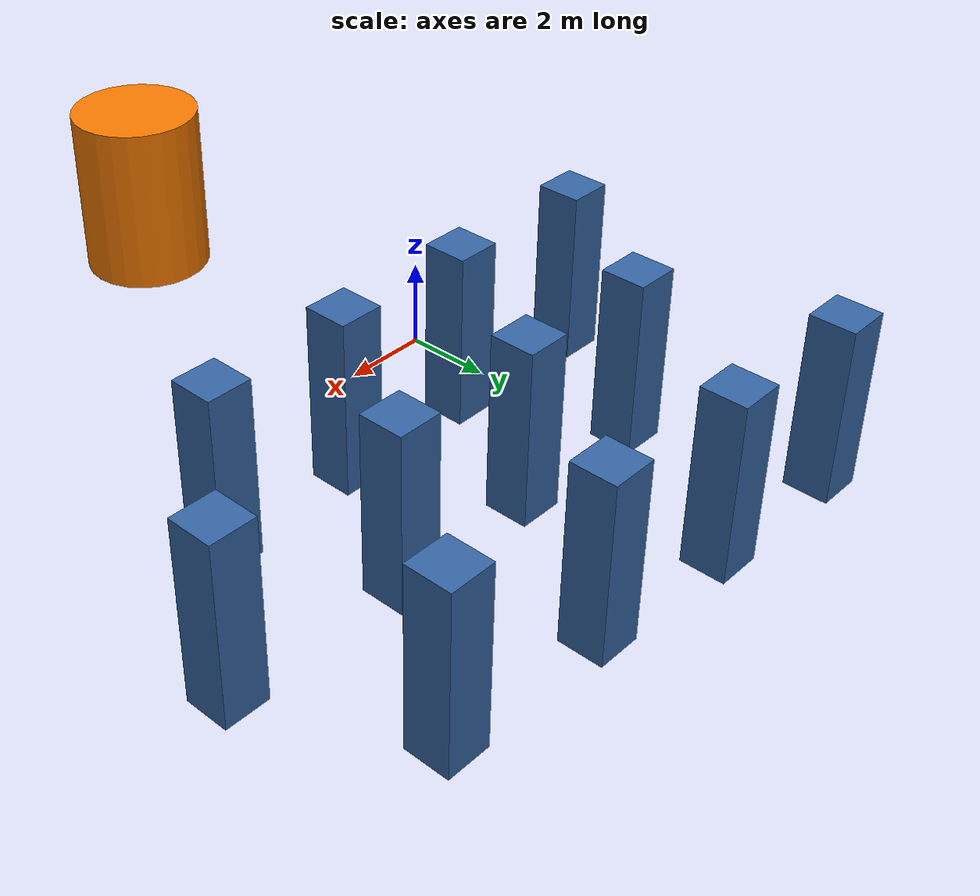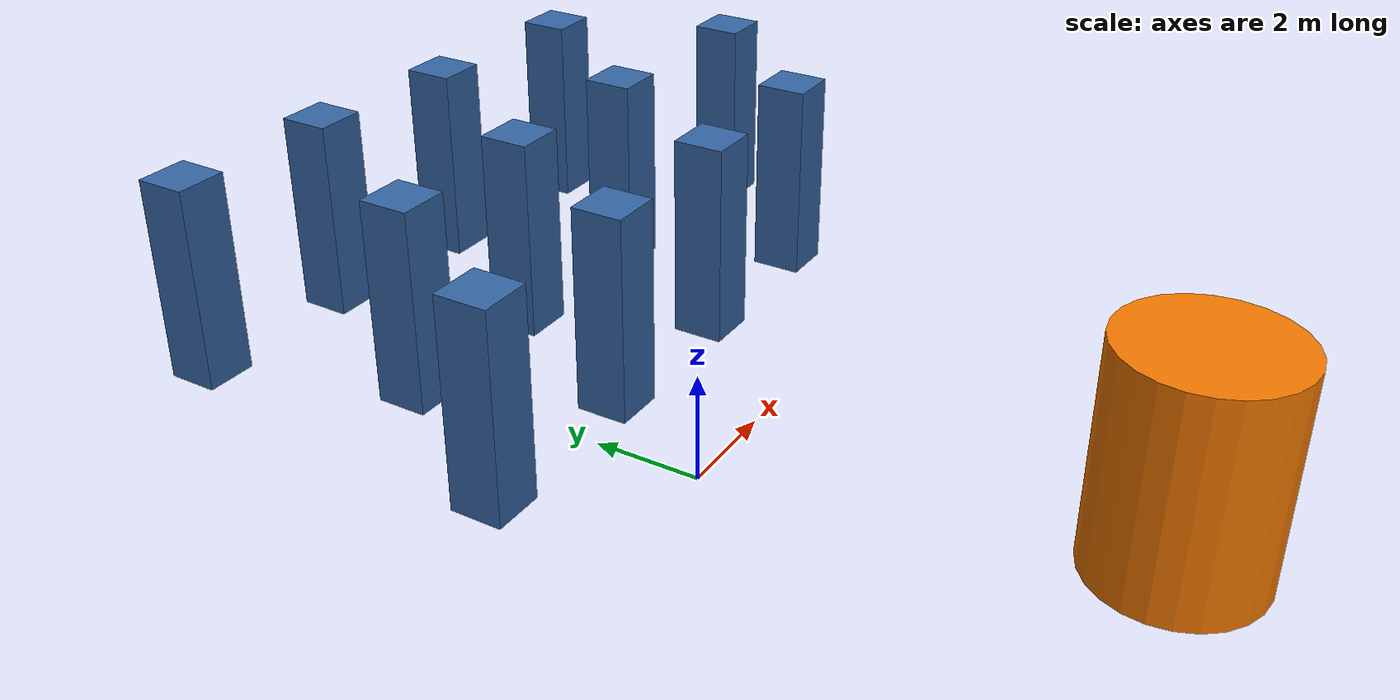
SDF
<sdf version="1.6">
 <world name="vrc_task_1">
  <scene><ambient>0.4 0.4 0.4 1</ambient><background>0.7 0.7 0.7 1</background><shadows>1</shadows></scene>
  <physics name="default_physics" default="0" type="ode">
   <ode>
    <solver>
     <type>quick</type>
     <iters>10</iters>
     <sor>1</sor>
     <use_dynamic_moi_rescaling>0</use_dynamic_moi_rescaling>
    </solver>
    <constraints>
     <cfm>0</cfm>
     <erp>0.2</erp>
     <contact_max_correcting_vel>100</contact_max_correcting_vel>
     <contact_surface_layer>0.001</contact_surface_layer>
    </constraints>
   </ode>
   <max_step_size>0.004</max_step_size>
   <real_time_factor>1</real_time_factor>
   <real_time_update_rate>250</real_time_update_rate>
  </physics>
  <light name="sun" type="directional">
   <pose>0 0 10 0 -0 0</pose>
   <diffuse>0.8 0.8 0.8 1</diffuse>
   <specular>0.2 0.2 0.2 1</specular>
   <attenuation>
    <range>1000</range>
    <constant>0.9</constant>
    <linear>0.01</linear>
    <quadratic>0.001</quadratic>
   </attenuation>
   <direction>-0.5 0.1 -0.9</direction>
  </light>
  <gravity>0 0 -9.8066</gravity>
  <magnetic_field>6e-06 2.3e-05 -4.2e-05</magnetic_field>
  <atmosphere type="adiabatic"/>
  <spherical_coordinates>
   <surface_model>EARTH_WGS84</surface_model>
   <latitude_deg>0</latitude_deg>
   <longitude_deg>0</longitude_deg>
   <elevation>0</elevation>
   <heading_deg>0</heading_deg>
  </spherical_coordinates>
  <audio><device>default</device></audio>
  <model name="unit_cylinder-v1">
   <link name="link">
    <inertial>
     <mass>1</mass>
     <inertia><ixx>0.145833</ixx><ixy>0</ixy><ixz>0</ixz><iyy>0.145833</iyy><iyz>0</iyz><izz>0.125</izz></inertia>
    </inertial>
    <pose>0 0 1.5 0 -0 0</pose>
    <visual name="visual">
     <geometry><cylinder><radius>1.5</radius><length>4</length></cylinder></geometry>
     <material>
      <script><name>Gazebo/Grey</name><uri>file://media/materials/scripts/gazebo.material</uri></script>
      <shader type="vertex"><normal_map>__default__</normal_map></shader>
      <ambient>0.961 0.475 0 1</ambient>
      <diffuse>0.7 0.7 0.7 1</diffuse>
      <specular>0.01 0.01 0.01 1</specular>
      <emissive>0 0 0 1</emissive>
     </material>
    </visual>
    <collision name="collision">
     <geometry><cylinder><radius>1.5</radius><length>4</length></cylinder></geometry>
     <surface>
      <friction>
       <ode><mu>1</mu><mu2>1</mu2><fdir1>0 0 0</fdir1><slip1>0</slip1><slip2>0</slip2></ode>
       <torsional>
        <coefficient>1</coefficient>
        <patch_radius>0</patch_radius>
        <surface_radius>0</surface_radius>
        <use_patch_radius>1</use_patch_radius>
        <ode><slip>0</slip></ode>
       </torsional>
      </friction>
      <bounce><restitution_coefficient>0</restitution_coefficient><threshold>1e+06</threshold></bounce>
      <contact>
       <collide_without_contact>0</collide_without_contact>
       <collide_without_contact_bitmask>1</collide_without_contact_bitmask>
       <collide_bitmask>1</collide_bitmask>
       <ode>
        <soft_cfm>0</soft_cfm>
        <soft_erp>0.2</soft_erp>
        <kp>1e+13</kp>
        <kd>1</kd>
        <max_vel>0.01</max_vel>
        <min_depth>0</min_depth>
       </ode>
       <bullet>
        <split_impulse>1</split_impulse>
        <split_impulse_penetration_threshold>-0.01</split_impulse_penetration_threshold>
        <soft_cfm>0</soft_cfm>
        <soft_erp>0.2</soft_erp>
        <kp>1e+13</kp>
        <kd>1</kd>
       </bullet>
      </contact>
     </surface>
    </collision>
   </link>
   <static>0</static>
   <pose>1.73791 -7.46995 0.499859 1.5e-05 4.7e-05 0.001402</pose>
  </model>
  <model name="unit_box-v1">
   <link name="link">
    <inertial>
     <mass>1</mass>
     <inertia>
      <ixx>0.166667</ixx>
      <ixy>0</ixy>
      <ixz>0</ixz>
      <iyy>0.166667</iyy>
      <iyz>0</iyz>
      <izz>0.166667</izz>
     </inertia>
    </inertial>
    <pose>0 0 1.5 0 -0 0</pose>
    <visual name="visual">
     <geometry><box><size>1 1 4</size></box></geometry>
     <material>
      <script><name>Gazebo/Grey</name><uri>file://media/materials/scripts/gazebo.material</uri></script>
      <shader type="vertex"><normal_map>__default__</normal_map></shader>
      <ambient>0.204 0.396 0.643 1</ambient>
      <diffuse>0.7 0.7 0.7 1</diffuse>
      <specular>0.01 0.01 0.01 1</specular>
      <emissive>0 0 0 1</emissive>
     </material>
    </visual>
    <collision name="collision">
     <geometry><box><size>1 1 4</size></box></geometry>
     <surface>
      <friction>
       <ode><mu>1</mu><mu2>1</mu2><fdir1>0 0 0</fdir1><slip1>0</slip1><slip2>0</slip2></ode>
       <torsional>
        <coefficient>1</coefficient>
        <patch_radius>0</patch_radius>
        <surface_radius>0</surface_radius>
        <use_patch_radius>1</use_patch_radius>
        <ode><slip>0</slip></ode>
       </torsional>
      </friction>
      <bounce><restitution_coefficient>0</restitution_coefficient><threshold>1e+06</threshold></bounce>
      <contact>
       <collide_without_contact>0</collide_without_contact>
       <collide_without_contact_bitmask>1</collide_without_contact_bitmask>
       <collide_bitmask>1</collide_bitmask>
       <ode>
        <soft_cfm>0</soft_cfm>
        <soft_erp>0.2</soft_erp>
        <kp>1e+13</kp>
        <kd>1</kd>
        <max_vel>0.01</max_vel>
        <min_depth>0</min_depth>
       </ode>
       <bullet>
        <split_impulse>1</split_impulse>
        <split_impulse_penetration_threshold>-0.01</split_impulse_penetration_threshold>
        <soft_cfm>0</soft_cfm>
        <soft_erp>0.2</soft_erp>
        <kp>1e+13</kp>
        <kd>1</kd>
       </bullet>
      </contact>
     </surface>
    </collision>
   </link>
   <static>0</static>
   <pose>1.25786 2.44016 0.499988 -2e-06 4e-06 -0.002988</pose>
  </model>
  <model name="unit_box-v1_clone">
   <link name="link">
    <inertial>
     <mass>1</mass>
     <inertia>
      <ixx>0.166667</ixx>
      <ixy>0</ixy>
      <ixz>0</ixz>
      <iyy>0.166667</iyy>
      <iyz>0</iyz>
      <izz>0.166667</izz>
     </inertia>
    </inertial>
    <pose>0 0 1.5 0 -0 0</pose>
    <visual name="visual">
     <geometry><box><size>1 1 4</size></box></geometry>
     <material>
      <script><name>Gazebo/Grey</name><uri>file://media/materials/scripts/gazebo.material</uri></script>
      <shader type="vertex"><normal_map>__default__</normal_map></shader>
      <ambient>0.204 0.396 0.643 1</ambient>
      <diffuse>0.7 0.7 0.7 1</diffuse>
      <specular>0.01 0.01 0.01 1</specular>
      <emissive>0 0 0 1</emissive>
     </material>
    </visual>
    <collision name="collision">
     <geometry><box><size>1 1 4</size></box></geometry>
     <surface>
      <friction>
       <ode><mu>1</mu><mu2>1</mu2><fdir1>0 0 0</fdir1><slip1>0</slip1><slip2>0</slip2></ode>
       <torsional>
        <coefficient>1</coefficient>
        <patch_radius>0</patch_radius>
        <surface_radius>0</surface_radius>
        <use_patch_radius>1</use_patch_radius>
        <ode><slip>0</slip></ode>
       </torsional>
      </friction>
      <bounce><restitution_coefficient>0</restitution_coefficient><threshold>1e+06</threshold></bounce>
      <contact>
       <collide_without_contact>0</collide_without_contact>
       <collide_without_contact_bitmask>1</collide_without_contact_bitmask>
       <collide_bitmask>1</collide_bitmask>
       <ode>
        <soft_cfm>0</soft_cfm>
        <soft_erp>0.2</soft_erp>
        <kp>1e+13</kp>
        <kd>1</kd>
        <max_vel>0.01</max_vel>
        <min_depth>0</min_depth>
       </ode>
       <bullet>
        <split_impulse>1</split_impulse>
        <split_impulse_penetration_threshold>-0.01</split_impulse_penetration_threshold>
        <soft_cfm>0</soft_cfm>
        <soft_erp>0.2</soft_erp>
        <kp>1e+13</kp>
        <kd>1</kd>
       </bullet>
      </contact>
     </surface>
    </collision>
   </link>
   <static>0</static>
   <pose>4.59566 2.42817 0.500001 -2.3e-05 -2e-06 -0.002993</pose>
  </model>
  <model name="unit_box-v1_clone_0">
   <link name="link">
    <inertial>
     <mass>1</mass>
     <inertia>
      <ixx>0.166667</ixx>
      <ixy>0</ixy>
      <ixz>0</ixz>
      <iyy>0.166667</iyy>
      <iyz>0</iyz>
      <izz>0.166667</izz>
     </inertia>
    </inertial>
    <pose>0 0 1.5 0 -0 0</pose>
    <visual name="visual">
     <geometry><box><size>1 1 4</size></box></geometry>
     <material>
      <script><name>Gazebo/Grey</name><uri>file://media/materials/scripts/gazebo.material</uri></script>
      <shader type="vertex"><normal_map>__default__</normal_map></shader>
      <ambient>0.204 0.396 0.643 1</ambient>
      <diffuse>0.7 0.7 0.7 1</diffuse>
      <specular>0.01 0.01 0.01 1</specular>
      <emissive>0 0 0 1</emissive>
     </material>
    </visual>
    <collision name="collision">
     <geometry><box><size>1 1 4</size></box></geometry>
     <surface>
      <friction>
       <ode><mu>1</mu><mu2>1</mu2><fdir1>0 0 0</fdir1><slip1>0</slip1><slip2>0</slip2></ode>
       <torsional>
        <coefficient>1</coefficient>
        <patch_radius>0</patch_radius>
        <surface_radius>0</surface_radius>
        <use_patch_radius>1</use_patch_radius>
        <ode><slip>0</slip></ode>
       </torsional>
      </friction>
      <bounce><restitution_coefficient>0</restitution_coefficient><threshold>1e+06</threshold></bounce>
      <contact>
       <collide_without_contact>0</collide_without_contact>
       <collide_without_contact_bitmask>1</collide_without_contact_bitmask>
       <collide_bitmask>1</collide_bitmask>
       <ode>
        <soft_cfm>0</soft_cfm>
        <soft_erp>0.2</soft_erp>
        <kp>1e+13</kp>
        <kd>1</kd>
        <max_vel>0.01</max_vel>
        <min_depth>0</min_depth>
       </ode>
       <bullet>
        <split_impulse>1</split_impulse>
        <split_impulse_penetration_threshold>-0.01</split_impulse_penetration_threshold>
        <soft_cfm>0</soft_cfm>
        <soft_erp>0.2</soft_erp>
        <kp>1e+13</kp>
        <kd>1</kd>
       </bullet>
      </contact>
     </surface>
    </collision>
   </link>
   <static>0</static>
   <pose>-2.3143 2.48659 0.500001 -2e-06 -2.3e-05 -0.003061</pose>
  </model>
  <model name="unit_box-v1_clone_1">
   <link name="link">
    <inertial>
     <mass>1</mass>
     <inertia>
      <ixx>0.166667</ixx>
      <ixy>0</ixy>
      <ixz>0</ixz>
      <iyy>0.166667</iyy>
      <iyz>0</iyz>
      <izz>0.166667</izz>
     </inertia>
    </inertial>
    <pose>0 0 1.5 0 -0 0</pose>
    <visual name="visual">
     <geometry><box><size>1 1 4</size></box></geometry>
     <material>
      <script><name>Gazebo/Grey</name><uri>file://media/materials/scripts/gazebo.material</uri></script>
      <shader type="vertex"><normal_map>__default__</normal_map></shader>
      <ambient>0.204 0.396 0.643 1</ambient>
      <diffuse>0.7 0.7 0.7 1</diffuse>
      <specular>0.01 0.01 0.01 1</specular>
      <emissive>0 0 0 1</emissive>
     </material>
    </visual>
    <collision name="collision">
     <geometry><box><size>1 1 4</size></box></geometry>
     <surface>
      <friction>
       <ode><mu>1</mu><mu2>1</mu2><fdir1>0 0 0</fdir1><slip1>0</slip1><slip2>0</slip2></ode>
       <torsional>
        <coefficient>1</coefficient>
        <patch_radius>0</patch_radius>
        <surface_radius>0</surface_radius>
        <use_patch_radius>1</use_patch_radius>
        <ode><slip>0</slip></ode>
       </torsional>
      </friction>
      <bounce><restitution_coefficient>0</restitution_coefficient><threshold>1e+06</threshold></bounce>
      <contact>
       <collide_without_contact>0</collide_without_contact>
       <collide_without_contact_bitmask>1</collide_without_contact_bitmask>
       <collide_bitmask>1</collide_bitmask>
       <ode>
        <soft_cfm>0</soft_cfm>
        <soft_erp>0.2</soft_erp>
        <kp>1e+13</kp>
        <kd>1</kd>
        <max_vel>0.01</max_vel>
        <min_depth>0</min_depth>
       </ode>
       <bullet>
        <split_impulse>1</split_impulse>
        <split_impulse_penetration_threshold>-0.01</split_impulse_penetration_threshold>
        <soft_cfm>0</soft_cfm>
        <soft_erp>0.2</soft_erp>
        <kp>1e+13</kp>
        <kd>1</kd>
       </bullet>
      </contact>
     </surface>
    </collision>
   </link>
   <static>0</static>
   <pose>7.93145 2.47085 0.500001 -2.3e-05 -2e-06 -0.003</pose>
  </model>
  <model name="unit_box-v1_clone_2">
   <link name="link">
    <inertial>
     <mass>1</mass>
     <inertia>
      <ixx>0.166667</ixx>
      <ixy>0</ixy>
      <ixz>0</ixz>
      <iyy>0.166667</iyy>
      <iyz>0</iyz>
      <izz>0.166667</izz>
     </inertia>
    </inertial>
    <pose>0 0 1.5 0 -0 0</pose>
    <visual name="visual">
     <geometry><box><size>1 1 4</size></box></geometry>
     <material>
      <script><name>Gazebo/Grey</name><uri>file://media/materials/scripts/gazebo.material</uri></script>
      <shader type="vertex"><normal_map>__default__</normal_map></shader>
      <ambient>0.204 0.396 0.643 1</ambient>
      <diffuse>0.7 0.7 0.7 1</diffuse>
      <specular>0.01 0.01 0.01 1</specular>
      <emissive>0 0 0 1</emissive>
     </material>
    </visual>
    <collision name="collision">
     <geometry><box><size>1 1 4</size></box></geometry>
     <surface>
      <friction>
       <ode><mu>1</mu><mu2>1</mu2><fdir1>0 0 0</fdir1><slip1>0</slip1><slip2>0</slip2></ode>
       <torsional>
        <coefficient>1</coefficient>
        <patch_radius>0</patch_radius>
        <surface_radius>0</surface_radius>
        <use_patch_radius>1</use_patch_radius>
        <ode><slip>0</slip></ode>
       </torsional>
      </friction>
      <bounce><restitution_coefficient>0</restitution_coefficient><threshold>1e+06</threshold></bounce>
      <contact>
       <collide_without_contact>0</collide_without_contact>
       <collide_without_contact_bitmask>1</collide_without_contact_bitmask>
       <collide_bitmask>1</collide_bitmask>
       <ode>
        <soft_cfm>0</soft_cfm>
        <soft_erp>0.2</soft_erp>
        <kp>1e+13</kp>
        <kd>1</kd>
        <max_vel>0.01</max_vel>
        <min_depth>0</min_depth>
       </ode>
       <bullet>
        <split_impulse>1</split_impulse>
        <split_impulse_penetration_threshold>-0.01</split_impulse_penetration_threshold>
        <soft_cfm>0</soft_cfm>
        <soft_erp>0.2</soft_erp>
        <kp>1e+13</kp>
        <kd>1</kd>
       </bullet>
      </contact>
     </surface>
    </collision>
   </link>
   <static>0</static>
   <pose>6.38993 5.62379 0.500001 -2e-06 -2.3e-05 -0.003068</pose>
  </model>
  <model name="unit_box-v1_clone_3">
   <link name="link">
    <inertial>
     <mass>1</mass>
     <inertia>
      <ixx>0.166667</ixx>
      <ixy>0</ixy>
      <ixz>0</ixz>
      <iyy>0.166667</iyy>
      <iyz>0</iyz>
      <izz>0.166667</izz>
     </inertia>
    </inertial>
    <pose>0 0 1.5 0 -0 0</pose>
    <visual name="visual">
     <geometry><box><size>1 1 4</size></box></geometry>
     <material>
      <script><name>Gazebo/Grey</name><uri>file://media/materials/scripts/gazebo.material</uri></script>
      <shader type="vertex"><normal_map>__default__</normal_map></shader>
      <ambient>0.204 0.396 0.643 1</ambient>
      <diffuse>0.7 0.7 0.7 1</diffuse>
      <specular>0.01 0.01 0.01 1</specular>
      <emissive>0 0 0 1</emissive>
     </material>
    </visual>
    <collision name="collision">
     <geometry><box><size>1 1 4</size></box></geometry>
     <surface>
      <friction>
       <ode><mu>1</mu><mu2>1</mu2><fdir1>0 0 0</fdir1><slip1>0</slip1><slip2>0</slip2></ode>
       <torsional>
        <coefficient>1</coefficient>
        <patch_radius>0</patch_radius>
        <surface_radius>0</surface_radius>
        <use_patch_radius>1</use_patch_radius>
        <ode><slip>0</slip></ode>
       </torsional>
      </friction>
      <bounce><restitution_coefficient>0</restitution_coefficient><threshold>1e+06</threshold></bounce>
      <contact>
       <collide_without_contact>0</collide_without_contact>
       <collide_without_contact_bitmask>1</collide_without_contact_bitmask>
       <collide_bitmask>1</collide_bitmask>
       <ode>
        <soft_cfm>0</soft_cfm>
        <soft_erp>0.2</soft_erp>
        <kp>1e+13</kp>
        <kd>1</kd>
        <max_vel>0.01</max_vel>
        <min_depth>0</min_depth>
       </ode>
       <bullet>
        <split_impulse>1</split_impulse>
        <split_impulse_penetration_threshold>-0.01</split_impulse_penetration_threshold>
        <soft_cfm>0</soft_cfm>
        <soft_erp>0.2</soft_erp>
        <kp>1e+13</kp>
        <kd>1</kd>
       </bullet>
      </contact>
     </surface>
    </collision>
   </link>
   <static>0</static>
   <pose>2.93788 5.63514 0.500001 -2.3e-05 -2e-06 -0.003006</pose>
  </model>
  <model name="unit_box-v1_clone_4">
   <link name="link">
    <inertial>
     <mass>1</mass>
     <inertia>
      <ixx>0.166667</ixx>
      <ixy>0</ixy>
      <ixz>0</ixz>
      <iyy>0.166667</iyy>
      <iyz>0</iyz>
      <izz>0.166667</izz>
     </inertia>
    </inertial>
    <pose>0 0 1.5 0 -0 0</pose>
    <visual name="visual">
     <geometry><box><size>1 1 4</size></box></geometry>
     <material>
      <script><name>Gazebo/Grey</name><uri>file://media/materials/scripts/gazebo.material</uri></script>
      <shader type="vertex"><normal_map>__default__</normal_map></shader>
      <ambient>0.204 0.396 0.643 1</ambient>
      <diffuse>0.7 0.7 0.7 1</diffuse>
      <specular>0.01 0.01 0.01 1</specular>
      <emissive>0 0 0 1</emissive>
     </material>
    </visual>
    <collision name="collision">
     <geometry><box><size>1 1 4</size></box></geometry>
     <surface>
      <friction>
       <ode><mu>1</mu><mu2>1</mu2><fdir1>0 0 0</fdir1><slip1>0</slip1><slip2>0</slip2></ode>
       <torsional>
        <coefficient>1</coefficient>
        <patch_radius>0</patch_radius>
        <surface_radius>0</surface_radius>
        <use_patch_radius>1</use_patch_radius>
        <ode><slip>0</slip></ode>
       </torsional>
      </friction>
      <bounce><restitution_coefficient>0</restitution_coefficient><threshold>1e+06</threshold></bounce>
      <contact>
       <collide_without_contact>0</collide_without_contact>
       <collide_without_contact_bitmask>1</collide_without_contact_bitmask>
       <collide_bitmask>1</collide_bitmask>
       <ode>
        <soft_cfm>0</soft_cfm>
        <soft_erp>0.2</soft_erp>
        <kp>1e+13</kp>
        <kd>1</kd>
        <max_vel>0.01</max_vel>
        <min_depth>0</min_depth>
       </ode>
       <bullet>
        <split_impulse>1</split_impulse>
        <split_impulse_penetration_threshold>-0.01</split_impulse_penetration_threshold>
        <soft_cfm>0</soft_cfm>
        <soft_erp>0.2</soft_erp>
        <kp>1e+13</kp>
        <kd>1</kd>
       </bullet>
      </contact>
     </surface>
    </collision>
   </link>
   <static>0</static>
   <pose>-0.362466 5.68028 0.500001 -2e-06 -2.3e-05 -0.003074</pose>
  </model>
  <model name="unit_box-v1_clone_5">
   <link name="link">
    <inertial>
     <mass>1</mass>
     <inertia>
      <ixx>0.166667</ixx>
      <ixy>0</ixy>
      <ixz>0</ixz>
      <iyy>0.166667</iyy>
      <iyz>0</iyz>
      <izz>0.166667</izz>
     </inertia>
    </inertial>
    <pose>0 0 1.5 0 -0 0</pose>
    <visual name="visual">
     <geometry><box><size>1 1 4</size></box></geometry>
     <material>
      <script><name>Gazebo/Grey</name><uri>file://media/materials/scripts/gazebo.material</uri></script>
      <shader type="vertex"><normal_map>__default__</normal_map></shader>
      <ambient>0.204 0.396 0.643 1</ambient>
      <diffuse>0.7 0.7 0.7 1</diffuse>
      <specular>0.01 0.01 0.01 1</specular>
      <emissive>0 0 0 1</emissive>
     </material>
    </visual>
    <collision name="collision">
     <geometry><box><size>1 1 4</size></box></geometry>
     <surface>
      <friction>
       <ode><mu>1</mu><mu2>1</mu2><fdir1>0 0 0</fdir1><slip1>0</slip1><slip2>0</slip2></ode>
       <torsional>
        <coefficient>1</coefficient>
        <patch_radius>0</patch_radius>
        <surface_radius>0</surface_radius>
        <use_patch_radius>1</use_patch_radius>
        <ode><slip>0</slip></ode>
       </torsional>
      </friction>
      <bounce><restitution_coefficient>0</restitution_coefficient><threshold>1e+06</threshold></bounce>
      <contact>
       <collide_without_contact>0</collide_without_contact>
       <collide_without_contact_bitmask>1</collide_without_contact_bitmask>
       <collide_bitmask>1</collide_bitmask>
       <ode>
        <soft_cfm>0</soft_cfm>
        <soft_erp>0.2</soft_erp>
        <kp>1e+13</kp>
        <kd>1</kd>
        <max_vel>0.01</max_vel>
        <min_depth>0</min_depth>
       </ode>
       <bullet>
        <split_impulse>1</split_impulse>
        <split_impulse_penetration_threshold>-0.01</split_impulse_penetration_threshold>
        <soft_cfm>0</soft_cfm>
        <soft_erp>0.2</soft_erp>
        <kp>1e+13</kp>
        <kd>1</kd>
       </bullet>
      </contact>
     </surface>
    </collision>
   </link>
   <static>0</static>
   <pose>10.4431 5.41243 0.500001 -2.3e-05 -2e-06 -0.003013</pose>
  </model>
  <model name="unit_box-v1_clone_6">
   <link name="link">
    <inertial>
     <mass>1</mass>
     <inertia>
      <ixx>0.166667</ixx>
      <ixy>0</ixy>
      <ixz>0</ixz>
      <iyy>0.166667</iyy>
      <iyz>0</iyz>
      <izz>0.166667</izz>
     </inertia>
    </inertial>
    <pose>0 0 1.5 0 -0 0</pose>
    <visual name="visual">
     <geometry><box><size>1 1 4</size></box></geometry>
     <material>
      <script><name>Gazebo/Grey</name><uri>file://media/materials/scripts/gazebo.material</uri></script>
      <shader type="vertex"><normal_map>__default__</normal_map></shader>
      <ambient>0.204 0.396 0.643 1</ambient>
      <diffuse>0.7 0.7 0.7 1</diffuse>
      <specular>0.01 0.01 0.01 1</specular>
      <emissive>0 0 0 1</emissive>
     </material>
    </visual>
    <collision name="collision">
     <geometry><box><size>1 1 4</size></box></geometry>
     <surface>
      <friction>
       <ode><mu>1</mu><mu2>1</mu2><fdir1>0 0 0</fdir1><slip1>0</slip1><slip2>0</slip2></ode>
       <torsional>
        <coefficient>1</coefficient>
        <patch_radius>0</patch_radius>
        <surface_radius>0</surface_radius>
        <use_patch_radius>1</use_patch_radius>
        <ode><slip>0</slip></ode>
       </torsional>
      </friction>
      <bounce><restitution_coefficient>0</restitution_coefficient><threshold>1e+06</threshold></bounce>
      <contact>
       <collide_without_contact>0</collide_without_contact>
       <collide_without_contact_bitmask>1</collide_without_contact_bitmask>
       <collide_bitmask>1</collide_bitmask>
       <ode>
        <soft_cfm>0</soft_cfm>
        <soft_erp>0.2</soft_erp>
        <kp>1e+13</kp>
        <kd>1</kd>
        <max_vel>0.01</max_vel>
        <min_depth>0</min_depth>
       </ode>
       <bullet>
        <split_impulse>1</split_impulse>
        <split_impulse_penetration_threshold>-0.01</split_impulse_penetration_threshold>
        <soft_cfm>0</soft_cfm>
        <soft_erp>0.2</soft_erp>
        <kp>1e+13</kp>
        <kd>1</kd>
       </bullet>
      </contact>
     </surface>
    </collision>
   </link>
   <static>0</static>
   <pose>8.70268 8.85944 0.500001 -2e-06 -2.3e-05 -0.003081</pose>
  </model>
  <model name="unit_box-v1_clone_7">
   <link name="link">
    <inertial>
     <mass>1</mass>
     <inertia>
      <ixx>0.166667</ixx>
      <ixy>0</ixy>
      <ixz>0</ixz>
      <iyy>0.166667</iyy>
      <iyz>0</iyz>
      <izz>0.166667</izz>
     </inertia>
    </inertial>
    <pose>0 0 1.5 0 -0 0</pose>
    <visual name="visual">
     <geometry><box><size>1 1 4</size></box></geometry>
     <material>
      <script><name>Gazebo/Grey</name><uri>file://media/materials/scripts/gazebo.material</uri></script>
      <shader type="vertex"><normal_map>__default__</normal_map></shader>
      <ambient>0.204 0.396 0.643 1</ambient>
      <diffuse>0.7 0.7 0.7 1</diffuse>
      <specular>0.01 0.01 0.01 1</specular>
      <emissive>0 0 0 1</emissive>
     </material>
    </visual>
    <collision name="collision">
     <geometry><box><size>1 1 4</size></box></geometry>
     <surface>
      <friction>
       <ode><mu>1</mu><mu2>1</mu2><fdir1>0 0 0</fdir1><slip1>0</slip1><slip2>0</slip2></ode>
       <torsional>
        <coefficient>1</coefficient>
        <patch_radius>0</patch_radius>
        <surface_radius>0</surface_radius>
        <use_patch_radius>1</use_patch_radius>
        <ode><slip>0</slip></ode>
       </torsional>
      </friction>
      <bounce><restitution_coefficient>0</restitution_coefficient><threshold>1e+06</threshold></bounce>
      <contact>
       <collide_without_contact>0</collide_without_contact>
       <collide_without_contact_bitmask>1</collide_without_contact_bitmask>
       <collide_bitmask>1</collide_bitmask>
       <ode>
        <soft_cfm>0</soft_cfm>
        <soft_erp>0.2</soft_erp>
        <kp>1e+13</kp>
        <kd>1</kd>
        <max_vel>0.01</max_vel>
        <min_depth>0</min_depth>
       </ode>
       <bullet>
        <split_impulse>1</split_impulse>
        <split_impulse_penetration_threshold>-0.01</split_impulse_penetration_threshold>
        <soft_cfm>0</soft_cfm>
        <soft_erp>0.2</soft_erp>
        <kp>1e+13</kp>
        <kd>1</kd>
       </bullet>
      </contact>
     </surface>
    </collision>
   </link>
   <static>0</static>
   <pose>4.97596 9.09634 0.500001 -2.3e-05 -2e-06 -0.003019</pose>
  </model>
  <model name="unit_box-v1_clone_8">
   <link name="link">
    <inertial>
     <mass>1</mass>
     <inertia>
      <ixx>0.166667</ixx>
      <ixy>0</ixy>
      <ixz>0</ixz>
      <iyy>0.166667</iyy>
      <iyz>0</iyz>
      <izz>0.166667</izz>
     </inertia>
    </inertial>
    <pose>0 0 1.5 0 -0 0</pose>
    <visual name="visual">
     <geometry><box><size>1 1 4</size></box></geometry>
     <material>
      <script><name>Gazebo/Grey</name><uri>file://media/materials/scripts/gazebo.material</uri></script>
      <shader type="vertex"><normal_map>__default__</normal_map></shader>
      <ambient>0.204 0.396 0.643 1</ambient>
      <diffuse>0.7 0.7 0.7 1</diffuse>
      <specular>0.01 0.01 0.01 1</specular>
      <emissive>0 0 0 1</emissive>
     </material>
    </visual>
    <collision name="collision">
     <geometry><box><size>1 1 4</size></box></geometry>
     <surface>
      <friction>
       <ode><mu>1</mu><mu2>1</mu2><fdir1>0 0 0</fdir1><slip1>0</slip1><slip2>0</slip2></ode>
       <torsional>
        <coefficient>1</coefficient>
        <patch_radius>0</patch_radius>
        <surface_radius>0</surface_radius>
        <use_patch_radius>1</use_patch_radius>
        <ode><slip>0</slip></ode>
       </torsional>
      </friction>
      <bounce><restitution_coefficient>0</restitution_coefficient><threshold>1e+06</threshold></bounce>
      <contact>
       <collide_without_contact>0</collide_without_contact>
       <collide_without_contact_bitmask>1</collide_without_contact_bitmask>
       <collide_bitmask>1</collide_bitmask>
       <ode>
        <soft_cfm>0</soft_cfm>
        <soft_erp>0.2</soft_erp>
        <kp>1e+13</kp>
        <kd>1</kd>
        <max_vel>0.01</max_vel>
        <min_depth>0</min_depth>
       </ode>
       <bullet>
        <split_impulse>1</split_impulse>
        <split_impulse_penetration_threshold>-0.01</split_impulse_penetration_threshold>
        <soft_cfm>0</soft_cfm>
        <soft_erp>0.2</soft_erp>
        <kp>1e+13</kp>
        <kd>1</kd>
       </bullet>
      </contact>
     </surface>
    </collision>
   </link>
   <static>0</static>
   <pose>1.69038 9.41362 0.500001 0 -2.3e-05 -0.003087</pose>
  </model>
  <model name="unit_box-v1_clone_9">
   <link name="link">
    <inertial>
     <mass>1</mass>
     <inertia>
      <ixx>0.166667</ixx>
      <ixy>0</ixy>
      <ixz>0</ixz>
      <iyy>0.166667</iyy>
      <iyz>0</iyz>
      <izz>0.166667</izz>
     </inertia>
    </inertial>
    <pose>0 0 1.5 0 -0 0</pose>
    <visual name="visual">
     <geometry><box><size>1 1 4</size></box></geometry>
     <material>
      <script><name>Gazebo/Grey</name><uri>file://media/materials/scripts/gazebo.material</uri></script>
      <shader type="vertex"><normal_map>__default__</normal_map></shader>
      <ambient>0.204 0.396 0.643 1</ambient>
      <diffuse>0.7 0.7 0.7 1</diffuse>
      <specular>0.01 0.01 0.01 1</specular>
      <emissive>0 0 0 1</emissive>
     </material>
    </visual>
    <collision name="collision">
     <geometry><box><size>1 1 4</size></box></geometry>
     <surface>
      <friction>
       <ode><mu>1</mu><mu2>1</mu2><fdir1>0 0 0</fdir1><slip1>0</slip1><slip2>0</slip2></ode>
       <torsional>
        <coefficient>1</coefficient>
        <patch_radius>0</patch_radius>
        <surface_radius>0</surface_radius>
        <use_patch_radius>1</use_patch_radius>
        <ode><slip>0</slip></ode>
       </torsional>
      </friction>
      <bounce><restitution_coefficient>0</restitution_coefficient><threshold>1e+06</threshold></bounce>
      <contact>
       <collide_without_contact>0</collide_without_contact>
       <collide_without_contact_bitmask>1</collide_without_contact_bitmask>
       <collide_bitmask>1</collide_bitmask>
       <ode>
        <soft_cfm>0</soft_cfm>
        <soft_erp>0.2</soft_erp>
        <kp>1e+13</kp>
        <kd>1</kd>
        <max_vel>0.01</max_vel>
        <min_depth>0</min_depth>
       </ode>
       <bullet>
        <split_impulse>1</split_impulse>
        <split_impulse_penetration_threshold>-0.01</split_impulse_penetration_threshold>
        <soft_cfm>0</soft_cfm>
        <soft_erp>0.2</soft_erp>
        <kp>1e+13</kp>
        <kd>1</kd>
       </bullet>
      </contact>
     </surface>
    </collision>
   </link>
   <static>0</static>
   <pose>-1.70533 9.54035 0.499998 3e-06 2.4e-05 -0.003101</pose>
  </model>
 </world>
</sdf>
